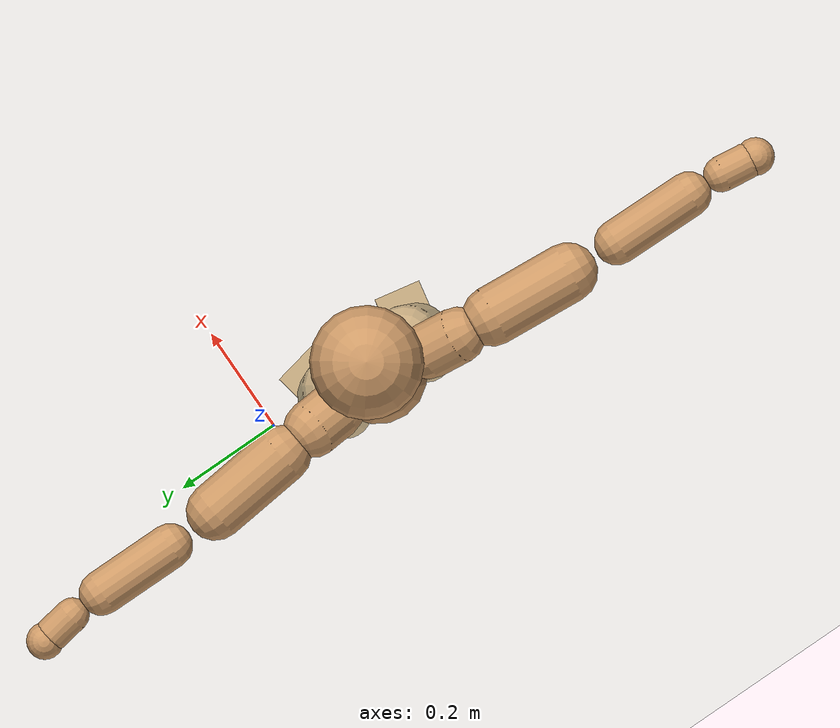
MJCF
<mujoco model="humanoid">
  <compiler coordinate="local"/>
  <default>
    <joint damping="0.0" armature="0.01" stiffness="0.0" limited="true"/>
    <geom conaffinity="1" condim="3" contype="7" margin="0.001" rgba="0.8 0.6 .4 1"/>
  </default>
  <asset>
    <texture type="skybox" builtin="gradient" rgb1=".4 .5 .6" rgb2="0 0 0" width="100" height="100"/>
    <texture builtin="flat" height="1278" mark="cross" markrgb="1 1 1" name="texgeom" random="0.01" rgb1="0.8 0.6 0.4" rgb2="0.8 0.6 0.4" type="cube" width="127"/>
    <texture builtin="checker" height="100" name="texplane" rgb1="0 0 0" rgb2="0.8 0.8 0.8" type="2d" width="100"/>
    <material name="MatPlane" reflectance="0.5" shininess="1" specular="1" texrepeat="60 60" texture="texplane"/>
    <material name="geom" texture="texgeom" texuniform="true"/>
  </asset>
  <worldbody>
    <light cutoff="100" diffuse="1 1 1" dir="-0 0 -1.3" directional="true" exponent="1" pos="0 0 1.3" specular=".1 .1 .1"/>
    <geom conaffinity="1" condim="3" name="floor" pos="0 0 0" rgba="0.8 0.9 0.8 1" size="100 100 .2" type="plane" material="MatPlane"/>
    <body name="Pelvis" pos="0.0007 -0.2079 0.033">
      <freejoint name="Pelvis"/>
      <geom type="sphere" contype="1" conaffinity="1" density="500" size="0.0938" pos="0.0000 0.0000 0.0000" name="Pelvis"/>
      <body name="L_Hip" pos="-0.0055 0.0727 -0.0885">
        <joint name="L_Hip_x" type="hinge" pos="0 0 0" axis="1 0 0" stiffness="800" damping="80" armature="0.02" range="-180.0000 180.0000"/>
        <joint name="L_Hip_y" type="hinge" pos="0 0 0" axis="0 1 0" stiffness="800" damping="80" armature="0.02" range="-180.0000 180.0000"/>
        <joint name="L_Hip_z" type="hinge" pos="0 0 0" axis="0 0 1" stiffness="800" damping="80" armature="0.02" range="-180.0000 180.0000"/>
        <geom type="capsule" contype="1" conaffinity="1" density="500" fromto="-0.0016 0.0060 -0.0724 -0.0064 0.0239 -0.2897" size="0.0623" name="L_Hip"/>
        <body name="L_Knee" pos="-0.008 0.0299 -0.3621">
          <joint name="L_Knee_x" type="hinge" pos="0 0 0" axis="1 0 0" stiffness="800" damping="80" armature="0.02" range="-180.0000 180.0000"/>
          <joint name="L_Knee_y" type="hinge" pos="0 0 0" axis="0 1 0" stiffness="800" damping="80" armature="0.02" range="-180.0000 180.0000"/>
          <joint name="L_Knee_z" type="hinge" pos="0 0 0" axis="0 0 1" stiffness="800" damping="80" armature="0.02" range="-180.0000 180.0000"/>
          <geom type="capsule" contype="1" conaffinity="1" density="500" fromto="-0.0087 -0.0023 -0.0763 -0.0347 -0.0091 -0.3054" size="0.0535" name="L_Knee"/>
          <body name="L_Ankle" pos="-0.0434 -0.0114 -0.3817">
            <joint name="L_Ankle_x" type="hinge" pos="0 0 0" axis="1 0 0" stiffness="800" damping="80" armature="0.02" range="-180.0000 180.0000"/>
            <joint name="L_Ankle_y" type="hinge" pos="0 0 0" axis="0 1 0" stiffness="800" damping="80" armature="0.02" range="-180.0000 180.0000"/>
            <joint name="L_Ankle_z" type="hinge" pos="0 0 0" axis="0 0 1" stiffness="800" damping="80" armature="0.02" range="-180.0000 180.0000"/>
            <geom type="box" contype="1" conaffinity="1" density="500" pos="0.0577 0.0118 -0.0274" size="0.0833 0.0459 0.02" quat="0.9949 0.0000 0.0000 0.1007" name="L_Ankle"/>
            <body name="L_Toe" pos="0.1154 0.0236 -0.0547">
              <joint name="L_Toe_x" type="hinge" pos="0 0 0" axis="1 0 0" stiffness="500" damping="50" armature="0.02" range="-180.0000 180.0000"/>
              <joint name="L_Toe_y" type="hinge" pos="0 0 0" axis="0 1 0" stiffness="500" damping="50" armature="0.02" range="-180.0000 180.0000"/>
              <joint name="L_Toe_z" type="hinge" pos="0 0 0" axis="0 0 1" stiffness="500" damping="50" armature="0.02" range="-180.0000 180.0000"/>
              <geom type="box" contype="1" conaffinity="1" density="500" pos="0.0000 0.0000 0.0269" size="0.0009 0.0023 0.001" quat="0.9942 0.0000 0.0000 0.1072" name="L_Toe"/>
            </body>
          </body>
        </body>
      </body>
      <body name="R_Hip" pos="-0.0026 -0.0704 -0.0878">
        <joint name="R_Hip_x" type="hinge" pos="0 0 0" axis="1 0 0" stiffness="800" damping="80" armature="0.02" range="-180.0000 180.0000"/>
        <joint name="R_Hip_y" type="hinge" pos="0 0 0" axis="0 1 0" stiffness="800" damping="80" armature="0.02" range="-180.0000 180.0000"/>
        <joint name="R_Hip_z" type="hinge" pos="0 0 0" axis="0 0 1" stiffness="800" damping="80" armature="0.02" range="-180.0000 180.0000"/>
        <geom type="capsule" contype="1" conaffinity="1" density="500" fromto="-0.0020 -0.0070 -0.0737 -0.0081 -0.0280 -0.2948" size="0.0616" name="R_Hip"/>
        <body name="R_Knee" pos="-0.0101 -0.035 -0.3685">
          <joint name="R_Knee_x" type="hinge" pos="0 0 0" axis="1 0 0" stiffness="800" damping="80" armature="0.02" range="-180.0000 180.0000"/>
          <joint name="R_Knee_y" type="hinge" pos="0 0 0" axis="0 1 0" stiffness="800" damping="80" armature="0.02" range="-180.0000 180.0000"/>
          <joint name="R_Knee_z" type="hinge" pos="0 0 0" axis="0 0 1" stiffness="800" damping="80" armature="0.02" range="-180.0000 180.0000"/>
          <geom type="capsule" contype="1" conaffinity="1" density="500" fromto="-0.0085 0.0028 -0.0766 -0.0339 0.0111 -0.3063" size="0.0538" name="R_Knee"/>
          <body name="R_Ankle" pos="-0.0424 0.0138 -0.3828">
            <joint name="R_Ankle_x" type="hinge" pos="0 0 0" axis="1 0 0" stiffness="800" damping="80" armature="0.02" range="-180.0000 180.0000"/>
            <joint name="R_Ankle_y" type="hinge" pos="0 0 0" axis="0 1 0" stiffness="800" damping="80" armature="0.02" range="-180.0000 180.0000"/>
            <joint name="R_Ankle_z" type="hinge" pos="0 0 0" axis="0 0 1" stiffness="800" damping="80" armature="0.02" range="-180.0000 180.0000"/>
            <geom type="box" contype="1" conaffinity="1" density="500" pos="0.0595 -0.0114 -0.0230" size="0.084 0.0463 0.02" quat="0.9955 0.0000 0.0000 -0.0946" name="R_Ankle"/>
            <body name="R_Toe" pos="0.1189 -0.0228 -0.046">
              <joint name="R_Toe_x" type="hinge" pos="0 0 0" axis="1 0 0" stiffness="500" damping="50" armature="0.02" range="-180.0000 180.0000"/>
              <joint name="R_Toe_y" type="hinge" pos="0 0 0" axis="0 1 0" stiffness="500" damping="50" armature="0.02" range="-180.0000 180.0000"/>
              <joint name="R_Toe_z" type="hinge" pos="0 0 0" axis="0 0 1" stiffness="500" damping="50" armature="0.02" range="-180.0000 180.0000"/>
              <geom type="box" contype="1" conaffinity="1" density="500" pos="0.0000 0.0000 0.0248" size="0.0009 0.0023 0.0011" quat="0.9964 0.0000 0.0000 -0.0851" name="R_Toe"/>
            </body>
          </body>
        </body>
      </body>
      <body name="Torso" pos="-0.0247 -0.0023 0.102">
        <joint name="Torso_x" type="hinge" pos="0 0 0" axis="1 0 0" stiffness="1000" damping="100" armature="0.02" range="-180.0000 180.0000"/>
        <joint name="Torso_y" type="hinge" pos="0 0 0" axis="0 1 0" stiffness="1000" damping="100" armature="0.02" range="-180.0000 180.0000"/>
        <joint name="Torso_z" type="hinge" pos="0 0 0" axis="0 0 1" stiffness="1000" damping="100" armature="0.02" range="-180.0000 180.0000"/>
        <geom type="capsule" contype="1" conaffinity="1" density="500" fromto="-0.0018 0.0016 0.0731 -0.0012 0.0011 0.0487" size="0.066495" name="Torso"/>
        <body name="Spine" pos="-0.003 0.0027 0.1218">
          <joint name="Spine_x" type="hinge" pos="0 0 0" axis="1 0 0" stiffness="1000" damping="100" armature="0.02" range="-180.0000 180.0000"/>
          <joint name="Spine_y" type="hinge" pos="0 0 0" axis="0 1 0" stiffness="1000" damping="100" armature="0.02" range="-180.0000 180.0000"/>
          <joint name="Spine_z" type="hinge" pos="0 0 0" axis="0 0 1" stiffness="1000" damping="100" armature="0.02" range="-180.0000 180.0000"/>
          <geom type="capsule" contype="1" conaffinity="1" density="500" fromto="0.0161 0.0012 0.0289 0.0107 0.0008 0.0193" size="0.067611" name="Spine"/>
          <body name="Chest" pos="0.0268 0.002 0.0482">
            <joint name="Chest_x" type="hinge" pos="0 0 0" axis="1 0 0" stiffness="1000" damping="100" armature="0.02" range="-180.0000 180.0000"/>
            <joint name="Chest_y" type="hinge" pos="0 0 0" axis="0 1 0" stiffness="1000" damping="100" armature="0.02" range="-180.0000 180.0000"/>
            <joint name="Chest_z" type="hinge" pos="0 0 0" axis="0 0 1" stiffness="1000" damping="100" armature="0.02" range="-180.0000 180.0000"/>
            <geom type="capsule" contype="1" conaffinity="1" density="500" fromto="-0.0277 -0.0004 0.0899 -0.0184 -0.0003 0.0599" size="0.090117" name="Chest"/>
            <body name="Neck" pos="-0.054 -0.0004 0.211">
              <joint name="Neck_x" type="hinge" pos="0 0 0" axis="1 0 0" stiffness="500" damping="50" armature="0.02" range="-180.0000 180.0000"/>
              <joint name="Neck_y" type="hinge" pos="0 0 0" axis="0 1 0" stiffness="500" damping="50" armature="0.02" range="-180.0000 180.0000"/>
              <joint name="Neck_z" type="hinge" pos="0 0 0" axis="0 0 1" stiffness="500" damping="50" armature="0.02" range="-180.0000 180.0000"/>
              <geom type="capsule" contype="1" conaffinity="1" density="500" fromto="0.0099 0.0008 0.0118 0.0396 0.0031 0.0471" size="0.038409" name="Neck"/>
              <body name="Head" pos="0.0496 0.0039 0.0589">
                <joint name="Head_x" type="hinge" pos="0 0 0" axis="1 0 0" stiffness="500" damping="50" armature="0.02" range="-180.0000 180.0000"/>
                <joint name="Head_y" type="hinge" pos="0 0 0" axis="0 1 0" stiffness="500" damping="50" armature="0.02" range="-180.0000 180.0000"/>
                <joint name="Head_z" type="hinge" pos="0 0 0" axis="0 0 1" stiffness="500" damping="50" armature="0.02" range="-180.0000 180.0000"/>
                <geom type="sphere" contype="1" conaffinity="1" density="500" size="0.0987" pos="0.0000 0.0000 0.0000" name="Head"/>
              </body>
            </body>
            <body name="L_Thorax" pos="-0.0392 0.0768 0.1206">
              <joint name="L_Thorax_x" type="hinge" pos="0 0 0" axis="1 0 0" stiffness="500" damping="50" armature="0.02" range="-180.0000 180.0000"/>
              <joint name="L_Thorax_y" type="hinge" pos="0 0 0" axis="0 1 0" stiffness="500" damping="50" armature="0.02" range="-180.0000 180.0000"/>
              <joint name="L_Thorax_z" type="hinge" pos="0 0 0" axis="0 0 1" stiffness="500" damping="50" armature="0.02" range="-180.0000 180.0000"/>
              <geom type="capsule" contype="1" conaffinity="1" density="500" fromto="-0.0013 0.0174 0.0066 -0.0054 0.0695 0.0264" size="0.0508" name="L_Thorax"/>
              <body name="L_Shoulder" pos="-0.0067 0.0869 0.0329">
                <joint name="L_Shoulder_x" type="hinge" pos="0 0 0" axis="1 0 0" stiffness="500" damping="50" armature="0.02" range="-720.0000 720.0000"/>
                <joint name="L_Shoulder_y" type="hinge" pos="0 0 0" axis="0 1 0" stiffness="500" damping="50" armature="0.02" range="-720.0000 720.0000"/>
                <joint name="L_Shoulder_z" type="hinge" pos="0 0 0" axis="0 0 1" stiffness="500" damping="50" armature="0.02" range="-720.0000 720.0000"/>
                <geom type="capsule" contype="1" conaffinity="1" density="500" fromto="-0.0054 0.0504 -0.0023 -0.0215 0.2016 -0.0092" size="0.0512" name="L_Shoulder"/>
                <body name="L_Elbow" pos="-0.0269 0.2519 -0.0116">
                  <joint name="L_Elbow_x" type="hinge" pos="0 0 0" axis="1 0 0" stiffness="500" damping="50" armature="0.02" range="-720.0000 720.0000"/>
                  <joint name="L_Elbow_y" type="hinge" pos="0 0 0" axis="0 1 0" stiffness="500" damping="50" armature="0.02" range="-720.0000 720.0000"/>
                  <joint name="L_Elbow_z" type="hinge" pos="0 0 0" axis="0 0 1" stiffness="500" damping="50" armature="0.02" range="-720.0000 720.0000"/>
                  <geom type="capsule" contype="1" conaffinity="1" density="500" fromto="0.0001 0.0479 0.0019 0.0004 0.1918 0.0075" size="0.0394" name="L_Elbow"/>
                  <body name="L_Wrist" pos="0.0005 0.2397 0.0094">
                    <joint name="L_Wrist_x" type="hinge" pos="0 0 0" axis="1 0 0" stiffness="300" damping="30" armature="0.02" range="-180.0000 180.0000"/>
                    <joint name="L_Wrist_y" type="hinge" pos="0 0 0" axis="0 1 0" stiffness="300" damping="30" armature="0.02" range="-180.0000 180.0000"/>
                    <joint name="L_Wrist_z" type="hinge" pos="0 0 0" axis="0 0 1" stiffness="300" damping="30" armature="0.02" range="-180.0000 180.0000"/>
                    <geom type="capsule" contype="1" conaffinity="1" density="500" fromto="-0.0027 0.0161 -0.0019 -0.0107 0.0645 -0.0078" size="0.0305" name="L_Wrist"/>
                    <body name="L_Hand" pos="-0.0133 0.0806 -0.0097">
                      <joint name="L_Hand_x" type="hinge" pos="0 0 0" axis="1 0 0" stiffness="300" damping="30" armature="0.02" range="-180.0000 180.0000"/>
                      <joint name="L_Hand_y" type="hinge" pos="0 0 0" axis="0 1 0" stiffness="300" damping="30" armature="0.02" range="-180.0000 180.0000"/>
                      <joint name="L_Hand_z" type="hinge" pos="0 0 0" axis="0 0 1" stiffness="300" damping="30" armature="0.02" range="-180.0000 180.0000"/>
                      <geom type="sphere" contype="1" conaffinity="1" density="500" size="0.0325" pos="0.0000 0.0000 0.0000" name="L_Hand"/>
                    </body>
                  </body>
                </body>
              </body>
            </body>
            <body name="R_Thorax" pos="-0.045 -0.0787 0.1179">
              <joint name="R_Thorax_x" type="hinge" pos="0 0 0" axis="1 0 0" stiffness="500" damping="50" armature="0.02" range="-180.0000 180.0000"/>
              <joint name="R_Thorax_y" type="hinge" pos="0 0 0" axis="0 1 0" stiffness="500" damping="50" armature="0.02" range="-180.0000 180.0000"/>
              <joint name="R_Thorax_z" type="hinge" pos="0 0 0" axis="0 0 1" stiffness="500" damping="50" armature="0.02" range="-180.0000 180.0000"/>
              <geom type="capsule" contype="1" conaffinity="1" density="500" fromto="-0.0021 -0.0184 0.0069 -0.0085 -0.0737 0.0275" size="0.0501" name="R_Thorax"/>
              <body name="R_Shoulder" pos="-0.0107 -0.0921 0.0344">
                <joint name="R_Shoulder_x" type="hinge" pos="0 0 0" axis="1 0 0" stiffness="500" damping="50" armature="0.02" range="-720.0000 720.0000"/>
                <joint name="R_Shoulder_y" type="hinge" pos="0 0 0" axis="0 1 0" stiffness="500" damping="50" armature="0.02" range="-720.0000 720.0000"/>
                <joint name="R_Shoulder_z" type="hinge" pos="0 0 0" axis="0 0 1" stiffness="500" damping="50" armature="0.02" range="-720.0000 720.0000"/>
                <geom type="capsule" contype="1" conaffinity="1" density="500" fromto="-0.0041 -0.0502 -0.0028 -0.0163 -0.2008 -0.0113" size="0.0528" name="R_Shoulder"/>
                <body name="R_Elbow" pos="-0.0204 -0.251 -0.0142">
                  <joint name="R_Elbow_x" type="hinge" pos="0 0 0" axis="1 0 0" stiffness="500" damping="50" armature="0.02" range="-720.0000 720.0000"/>
                  <joint name="R_Elbow_y" type="hinge" pos="0 0 0" axis="0 1 0" stiffness="500" damping="50" armature="0.02" range="-720.0000 720.0000"/>
                  <joint name="R_Elbow_z" type="hinge" pos="0 0 0" axis="0 0 1" stiffness="500" damping="50" armature="0.02" range="-720.0000 720.0000"/>
                  <geom type="capsule" contype="1" conaffinity="1" density="500" fromto="-0.0006 -0.0498 0.0018 -0.0026 -0.1994 0.0073" size="0.0397" name="R_Elbow"/>
                  <body name="R_Wrist" pos="-0.0032 -0.2492 0.0092">
                    <joint name="R_Wrist_x" type="hinge" pos="0 0 0" axis="1 0 0" stiffness="300" damping="30" armature="0.02" range="-180.0000 180.0000"/>
                    <joint name="R_Wrist_y" type="hinge" pos="0 0 0" axis="0 1 0" stiffness="300" damping="30" armature="0.02" range="-180.0000 180.0000"/>
                    <joint name="R_Wrist_z" type="hinge" pos="0 0 0" axis="0 0 1" stiffness="300" damping="30" armature="0.02" range="-180.0000 180.0000"/>
                    <geom type="capsule" contype="1" conaffinity="1" density="500" fromto="-0.0022 -0.0166 -0.0015 -0.0086 -0.0662 -0.0060" size="0.0317" name="R_Wrist"/>
                    <body name="R_Hand" pos="-0.0108 -0.0828 -0.0075">
                      <joint name="R_Hand_x" type="hinge" pos="0 0 0" axis="1 0 0" stiffness="300" damping="30" armature="0.02" range="-180.0000 180.0000"/>
                      <joint name="R_Hand_y" type="hinge" pos="0 0 0" axis="0 1 0" stiffness="300" damping="30" armature="0.02" range="-180.0000 180.0000"/>
                      <joint name="R_Hand_z" type="hinge" pos="0 0 0" axis="0 0 1" stiffness="300" damping="30" armature="0.02" range="-180.0000 180.0000"/>
                      <geom type="sphere" contype="1" conaffinity="1" density="500" size="0.0333" pos="0.0000 0.0000 0.0000" name="R_Hand"/>
                    </body>
                  </body>
                </body>
              </body>
            </body>
          </body>
        </body>
      </body>
    </body>
  </worldbody>
  <actuator>
    <motor name="L_Hip_x" joint="L_Hip_x" gear="500"/>
    <motor name="L_Hip_y" joint="L_Hip_y" gear="500"/>
    <motor name="L_Hip_z" joint="L_Hip_z" gear="500"/>
    <motor name="L_Knee_x" joint="L_Knee_x" gear="500"/>
    <motor name="L_Knee_y" joint="L_Knee_y" gear="500"/>
    <motor name="L_Knee_z" joint="L_Knee_z" gear="500"/>
    <motor name="L_Ankle_x" joint="L_Ankle_x" gear="500"/>
    <motor name="L_Ankle_y" joint="L_Ankle_y" gear="500"/>
    <motor name="L_Ankle_z" joint="L_Ankle_z" gear="500"/>
    <motor name="L_Toe_x" joint="L_Toe_x" gear="500"/>
    <motor name="L_Toe_y" joint="L_Toe_y" gear="500"/>
    <motor name="L_Toe_z" joint="L_Toe_z" gear="500"/>
    <motor name="R_Hip_x" joint="R_Hip_x" gear="500"/>
    <motor name="R_Hip_y" joint="R_Hip_y" gear="500"/>
    <motor name="R_Hip_z" joint="R_Hip_z" gear="500"/>
    <motor name="R_Knee_x" joint="R_Knee_x" gear="500"/>
    <motor name="R_Knee_y" joint="R_Knee_y" gear="500"/>
    <motor name="R_Knee_z" joint="R_Knee_z" gear="500"/>
    <motor name="R_Ankle_x" joint="R_Ankle_x" gear="500"/>
    <motor name="R_Ankle_y" joint="R_Ankle_y" gear="500"/>
    <motor name="R_Ankle_z" joint="R_Ankle_z" gear="500"/>
    <motor name="R_Toe_x" joint="R_Toe_x" gear="500"/>
    <motor name="R_Toe_y" joint="R_Toe_y" gear="500"/>
    <motor name="R_Toe_z" joint="R_Toe_z" gear="500"/>
    <motor name="Torso_x" joint="Torso_x" gear="500"/>
    <motor name="Torso_y" joint="Torso_y" gear="500"/>
    <motor name="Torso_z" joint="Torso_z" gear="500"/>
    <motor name="Spine_x" joint="Spine_x" gear="500"/>
    <motor name="Spine_y" joint="Spine_y" gear="500"/>
    <motor name="Spine_z" joint="Spine_z" gear="500"/>
    <motor name="Chest_x" joint="Chest_x" gear="500"/>
    <motor name="Chest_y" joint="Chest_y" gear="500"/>
    <motor name="Chest_z" joint="Chest_z" gear="500"/>
    <motor name="Neck_x" joint="Neck_x" gear="500"/>
    <motor name="Neck_y" joint="Neck_y" gear="500"/>
    <motor name="Neck_z" joint="Neck_z" gear="500"/>
    <motor name="Head_x" joint="Head_x" gear="500"/>
    <motor name="Head_y" joint="Head_y" gear="500"/>
    <motor name="Head_z" joint="Head_z" gear="500"/>
    <motor name="L_Thorax_x" joint="L_Thorax_x" gear="500"/>
    <motor name="L_Thorax_y" joint="L_Thorax_y" gear="500"/>
    <motor name="L_Thorax_z" joint="L_Thorax_z" gear="500"/>
    <motor name="L_Shoulder_x" joint="L_Shoulder_x" gear="500"/>
    <motor name="L_Shoulder_y" joint="L_Shoulder_y" gear="500"/>
    <motor name="L_Shoulder_z" joint="L_Shoulder_z" gear="500"/>
    <motor name="L_Elbow_x" joint="L_Elbow_x" gear="500"/>
    <motor name="L_Elbow_y" joint="L_Elbow_y" gear="500"/>
    <motor name="L_Elbow_z" joint="L_Elbow_z" gear="500"/>
    <motor name="L_Wrist_x" joint="L_Wrist_x" gear="500"/>
    <motor name="L_Wrist_y" joint="L_Wrist_y" gear="500"/>
    <motor name="L_Wrist_z" joint="L_Wrist_z" gear="500"/>
    <motor name="L_Hand_x" joint="L_Hand_x" gear="500"/>
    <motor name="L_Hand_y" joint="L_Hand_y" gear="500"/>
    <motor name="L_Hand_z" joint="L_Hand_z" gear="500"/>
    <motor name="R_Thorax_x" joint="R_Thorax_x" gear="500"/>
    <motor name="R_Thorax_y" joint="R_Thorax_y" gear="500"/>
    <motor name="R_Thorax_z" joint="R_Thorax_z" gear="500"/>
    <motor name="R_Shoulder_x" joint="R_Shoulder_x" gear="500"/>
    <motor name="R_Shoulder_y" joint="R_Shoulder_y" gear="500"/>
    <motor name="R_Shoulder_z" joint="R_Shoulder_z" gear="500"/>
    <motor name="R_Elbow_x" joint="R_Elbow_x" gear="500"/>
    <motor name="R_Elbow_y" joint="R_Elbow_y" gear="500"/>
    <motor name="R_Elbow_z" joint="R_Elbow_z" gear="500"/>
    <motor name="R_Wrist_x" joint="R_Wrist_x" gear="500"/>
    <motor name="R_Wrist_y" joint="R_Wrist_y" gear="500"/>
    <motor name="R_Wrist_z" joint="R_Wrist_z" gear="500"/>
    <motor name="R_Hand_x" joint="R_Hand_x" gear="500"/>
    <motor name="R_Hand_y" joint="R_Hand_y" gear="500"/>
    <motor name="R_Hand_z" joint="R_Hand_z" gear="500"/>
  </actuator>
  <contact>
    <exclude body1="Torso" body2="Chest"/>
    <exclude body1="Head" body2="Chest"/>
    <exclude body1="R_Knee" body2="R_Toe"/>
    <exclude body1="R_Knee" body2="L_Ankle"/>
    <exclude body1="R_Knee" body2="L_Toe"/>
    <exclude body1="L_Knee" body2="L_Toe"/>
    <exclude body1="L_Knee" body2="R_Ankle"/>
    <exclude body1="L_Knee" body2="R_Toe"/>
    <exclude body1="L_Shoulder" body2="Chest"/>
    <exclude body1="R_Shoulder" body2="Chest"/>
  </contact>
  <sensor/>
  <size njmax="700" nconmax="700"/>
</mujoco>
